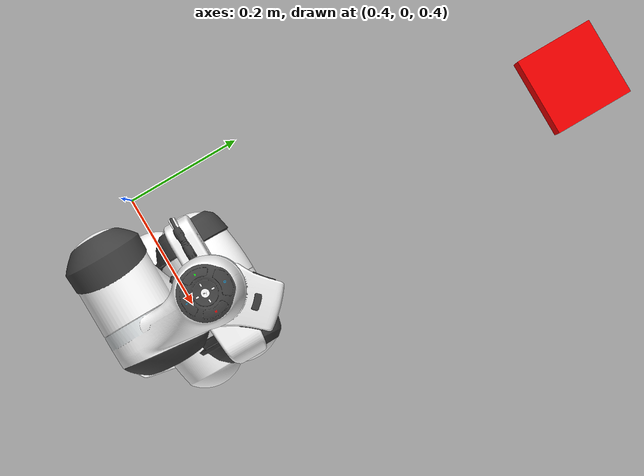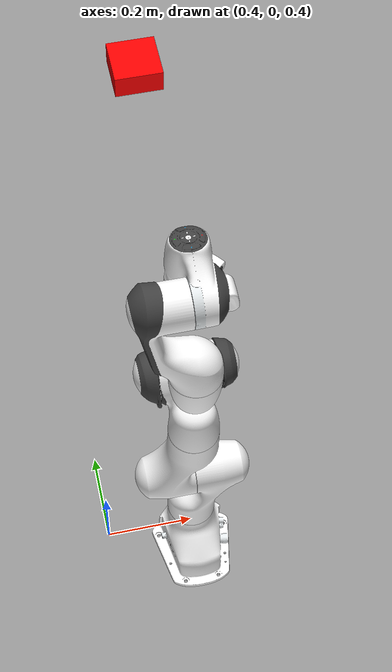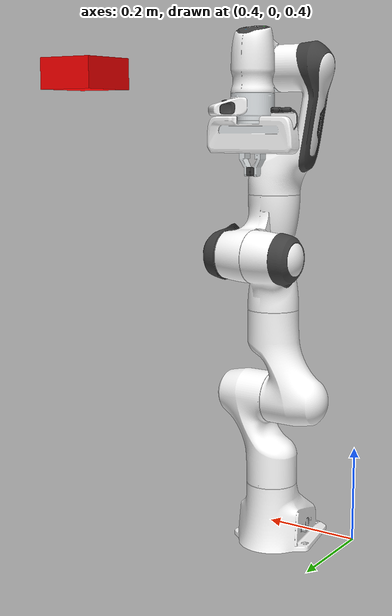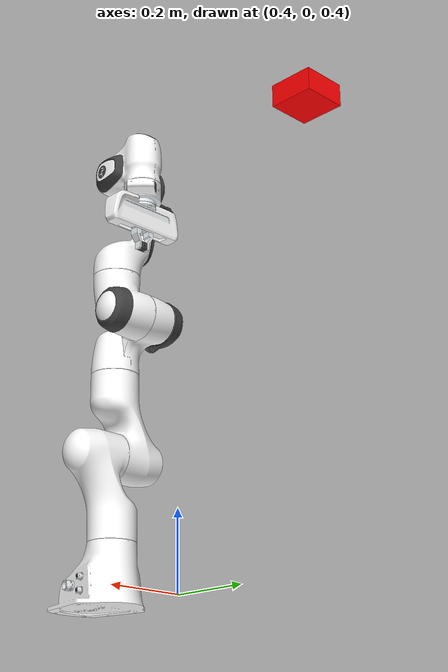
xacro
<?xml version="1.0"?>
<robot name="panda" xmlns:xacro="http://www.ros.org/wiki/xacro">
    <xacro:include filename="materials.xacro" />
    <xacro:include filename="arm.xacro" />
    <xacro:include filename="sensors.xacro" />
    <xacro:include filename="gazebo.xacro" />
    <xacro:include filename="ros2control.xacro" />
</robot>

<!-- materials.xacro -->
<robot xmlns:xacro="http://www.ros.org/wiki/xacro">
    <material name="red">
        <color rgba="1.0 0.0 0.0 1.000"/>
    </material>

    <material name="green">
        <color rgba="0.0 1.0 0.0 1.000"/>
    </material>

    <material name="blue">
        <color rgba="0.0 0.0 1.0 1.000"/>
    </material>
</robot>

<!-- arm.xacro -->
<robot xmlns:xacro="http://www.ros.org/wiki/xacro">
    <xacro:property name="link0_mass" value="0.1" />
    <xacro:property name="link1_mass" value="0.1" />
    <xacro:property name="link2_mass" value="0.1" />
    <xacro:property name="link3_mass" value="0.1" />
    <xacro:property name="link4_mass" value="0.1" />
    <xacro:property name="link5_mass" value="0.1" />
    <xacro:property name="link6_mass" value="0.1" />
    <xacro:property name="link7_mass" value="0.1" />
    <xacro:property name="hand_mass" value="0.1" />
    <xacro:property name="finger_mass" value="0.1" />

    <!-- World Frame -->
    <link name="world"/>

    <!-- Link 0 - Base -->
    <link name="panda_link0">
        <visual>
            <geometry>
                <mesh filename="package://panda_description/meshes/visual/link0.dae"/>
            </geometry>
        </visual>
        <collision>
            <geometry>
                <mesh filename="package://panda_description/meshes/collision/link0.obj"/>
            </geometry>
        </collision>
        <inertial>
            <origin xyz="0 0 0" rpy="0.0 0.0 0.0"/>
            <mass value="${link0_mass}"/>
            <inertia ixx="0.1" ixy="0.0" ixz="0.0" iyy="0.1" iyz="0.0" izz="0.1"/>
        </inertial>
    </link>

    <!-- World-Base Joint -->
    <joint name="virtual_joint" type="fixed">
        <parent link="world"/>
        <child link="panda_link0"/>
        <origin xyz="0.6 0 0.35" rpy="0 0 ${pi/2.0}"/>
    </joint>

    <!-- Link 1 -->
    <link name="panda_link1">
        <visual>
            <geometry>
                <mesh filename="package://panda_description/meshes/visual/link1.dae"/>
            </geometry>
        </visual>
        <collision>
            <geometry>
                <mesh filename="package://panda_description/meshes/collision/link1.obj"/>
            </geometry>
        </collision>
        <inertial>
            <origin xyz="0 0 0" rpy="0.0 0.0 0.0"/>
            <mass value="${link1_mass}"/>
            <inertia ixx="0.1" ixy="0.0" ixz="0.0" iyy="0.1" iyz="0.0" izz="0.1"/>
        </inertial>
    </link>

    <!-- Joint 1 -->
    <joint name="panda_joint1" type="revolute">
        <parent link="panda_link0"/>
        <child link="panda_link1"/>
        <origin xyz="0 0 0.333" rpy="0 0 0"/>
        <axis xyz="0 0 1"/>
        <limit effort="30.0" lower="-2.9671" upper="2.9671" velocity="10.0"/>
        <safety_controller k_position="100.0" k_velocity="40.0" soft_lower_limit="-2.8973" soft_upper_limit="2.8973"/>
    </joint>

    <!-- Link 2 -->
    <link name="panda_link2">
        <visual>
            <geometry>
                <mesh filename="package://panda_description/meshes/visual/link2.dae"/>
            </geometry>
        </visual>
        <collision>
            <geometry>
                <mesh filename="package://panda_description/meshes/collision/link2.obj"/>
            </geometry>
        </collision>
        <inertial>
            <origin xyz="0 0 0" rpy="0.0 0.0 0.0"/>
            <mass value="${link2_mass}"/>
            <inertia ixx="0.1" ixy="0.0" ixz="0.0" iyy="0.1" iyz="0.0" izz="0.1"/>
        </inertial>
    </link>

    <!-- Joint 2 -->
    <joint name="panda_joint2" type="revolute">
        <parent link="panda_link1"/>
        <child link="panda_link2"/>
        <origin rpy="-${pi/2.0} 0 0" xyz="0 0 0"/>
        <axis xyz="0 0 1"/>
        <limit effort="30.0" lower="-1.8326" upper="1.8326" velocity="10.0"/>
        <safety_controller k_position="100.0" k_velocity="40.0" soft_lower_limit="-1.7628" soft_upper_limit="1.7628"/>
    </joint>

    <!-- Link 3 -->
    <link name="panda_link3">
        <visual>
            <geometry>
                <mesh filename="package://panda_description/meshes/visual/link3.dae"/>
            </geometry>
        </visual>
        <collision>
            <geometry>
                <mesh filename="package://panda_description/meshes/collision/link3.obj"/>
            </geometry>
        </collision>
        <inertial>
            <origin xyz="0 0 0" rpy="0.0 0.0 0.0"/>
            <mass value="${link3_mass}"/>
            <inertia ixx="0.1" ixy="0.0" ixz="0.0" iyy="0.1" iyz="0.0" izz="0.1"/>
        </inertial>
    </link>

    <!-- Joint 3 -->
    <joint name="panda_joint3" type="revolute">
        <parent link="panda_link2"/>
        <child link="panda_link3"/>
        <origin rpy="${pi/2.0} 0 0" xyz="0 -0.316 0"/>
        <axis xyz="0 0 1"/>
        <limit effort="30.0" lower="-2.9671" upper="2.9671" velocity="10.0"/>
        <safety_controller k_position="100.0" k_velocity="40.0" soft_lower_limit="-2.8973" soft_upper_limit="2.8973"/>
    </joint>

    <!-- Link 4 -->
    <link name="panda_link4">
        <visual>
            <geometry>
                <mesh filename="package://panda_description/meshes/visual/link4.dae"/>
            </geometry>
        </visual>
        <collision>
            <geometry>
                <mesh filename="package://panda_description/meshes/collision/link4.obj"/>
            </geometry>
        </collision>
        <inertial>
            <origin xyz="0 0 0" rpy="0.0 0.0 0.0"/>
            <mass value="${link4_mass}"/>
            <inertia ixx="0.1" ixy="0.0" ixz="0.0" iyy="0.1" iyz="0.0" izz="0.1"/>
        </inertial>
    </link>

    <!-- Joint 4 -->
    <joint name="panda_joint4" type="revolute">
        <parent link="panda_link3"/>
        <child link="panda_link4"/>
        <origin rpy="${pi/2.0} 0 0" xyz="0.0825 0 0"/>
        <axis xyz="0 0 1"/>
        <limit effort="30.0" lower="-2.9671" upper="0.105" velocity="10.0"/>
        <safety_controller k_position="100.0" k_velocity="40.0" soft_lower_limit="-2.8973" soft_upper_limit="0.10"/>
    </joint>

    <!-- Link 5 -->
    <link name="panda_link5">
        <visual>
            <geometry>
                <mesh filename="package://panda_description/meshes/visual/link5.dae"/>
            </geometry>
        </visual>
        <collision>
            <geometry>
                <mesh filename="package://panda_description/meshes/collision/link5.obj"/>
            </geometry>
        </collision>
        <inertial>
            <origin xyz="0 0 0" rpy="0.0 0.0 0.0"/>
            <mass value="${link5_mass}"/>
            <inertia ixx="0.1" ixy="0.0" ixz="0.0" iyy="0.1" iyz="0.0" izz="0.1"/>
        </inertial>
    </link>

    <!-- Joint 5 -->
    <joint name="panda_joint5" type="revolute">
        <parent link="panda_link4"/>
        <child link="panda_link5"/>
        <origin rpy="-${pi/2.0} 0 0" xyz="-0.0825 0.384 0"/>
        <axis xyz="0 0 1"/>
        <limit effort="30.0" lower="-2.9671" upper="2.9671" velocity="10.0"/>
        <safety_controller k_position="100.0" k_velocity="40.0" soft_lower_limit="-2.8973" soft_upper_limit="2.8973"/>
    </joint>

    <!-- Link 6 -->
    <link name="panda_link6">
        <visual>
            <geometry>
                <mesh filename="package://panda_description/meshes/visual/link6.dae"/>
            </geometry>
        </visual>
        <collision>
            <geometry>
                <mesh filename="package://panda_description/meshes/collision/link6.obj"/>
            </geometry>
        </collision>
        <inertial>
            <origin xyz="0 0 0" rpy="0.0 0.0 0.0"/>
            <mass value="${link6_mass}"/>
            <inertia ixx="0.1" ixy="0.0" ixz="0.0" iyy="0.1" iyz="0.0" izz="0.1"/>
        </inertial>
    </link>

    <!-- Joint 6 -->
    <joint name="panda_joint6" type="revolute">
        <parent link="panda_link5"/>
        <child link="panda_link6"/>
        <origin rpy="${pi/2.0} 0 0" xyz="0 0 0"/>
        <axis xyz="0 0 1"/>
        <limit effort="30.0" lower="-0.0873" upper="3.8223" velocity="10.0"/>
        <safety_controller k_position="100.0" k_velocity="40.0" soft_lower_limit="-0.0175" soft_upper_limit="3.7525"/>
    </joint>

    <!-- Link 7 -->
    <link name="panda_link7">
        <visual>
            <geometry>
                <mesh filename="package://panda_description/meshes/visual/link7.dae"/>
            </geometry>
        </visual>
        <collision>
            <geometry>
                <mesh filename="package://panda_description/meshes/collision/link7.obj"/>
            </geometry>
        </collision>
        <inertial>
            <origin xyz="0 0 0" rpy="0.0 0.0 0.0"/>
            <mass value="${link7_mass}"/>
            <inertia ixx="0.1" ixy="0.0" ixz="0.0" iyy="0.1" iyz="0.0" izz="0.1"/>
        </inertial>
    </link>

    <!-- Joint 7 -->
    <joint name="panda_joint7" type="revolute">
        <parent link="panda_link6"/>
        <child link="panda_link7"/>
        <origin rpy="${pi/2.0} 0 0" xyz="0.088 0 0"/>
        <axis xyz="0 0 1"/>
        <limit effort="30.0" lower="-2.9671" upper="2.9671" velocity="10.0"/>
        <safety_controller k_position="100.0" k_velocity="40.0" soft_lower_limit="-2.8973" soft_upper_limit="2.8973"/>
    </joint>

    <!-- Hand Link -->
    <link name="panda_hand">
        <visual>
            <geometry>
                <mesh filename="package://panda_description/meshes/visual/hand.dae"/>
            </geometry>
        </visual>
        <collision>
            <geometry>
                <mesh filename="package://panda_description/meshes/collision/hand.obj"/>
            </geometry>
        </collision>
        <inertial>
            <origin xyz="0 0 0" rpy="0.0 0.0 0.0"/>
            <mass value="${hand_mass}"/>
            <inertia ixx="0.1" ixy="0.0" ixz="0.0" iyy="0.1" iyz="0.0" izz="0.1"/>
        </inertial>
    </link>

    <!-- Hand Joint -->
    <joint name="panda_hand_joint" type="fixed">
        <parent link="panda_link7"/>
        <child link="panda_hand"/>
        <origin rpy="0 0 0" xyz="0 0 0.106"/>
    </joint>

    <!-- Left Finger Link -->
    <link name="panda_leftfinger">
        <visual>
            <geometry>
                <mesh filename="package://panda_description/meshes/visual/finger.dae"/>
            </geometry>
        </visual>
        <collision>
            <geometry>
                <mesh filename="package://panda_description/meshes/collision/finger.obj"/>
            </geometry>
        </collision>
        <inertial>
            <origin xyz="0 0 0" rpy="0.0 0.0 0.0"/>
            <mass value="${finger_mass}"/>
            <inertia ixx="0.1" ixy="0.0" ixz="0.0" iyy="0.1" iyz="0.0" izz="0.1"/>
        </inertial>
        <gazebo reference="panda_leftfinger">
            <mu1>2.0</mu1>   <!-- 静摩擦系数 -->
            <mu2>1.5</mu2>   <!-- 动摩擦系数 -->
            <kp>1e5</kp>     <!-- 刚度（可选，提高接触刚度可减少穿透） -->
            <kd>1e3</kd>     <!-- 阻尼（可选） -->
        </gazebo>
    </link>

    <!-- Finger Joint 1 -->
    <joint name="panda_finger_joint1" type="prismatic">
        <parent link="panda_hand"/>
        <child link="panda_leftfinger"/>
        <origin rpy="0 0 0" xyz="0 0 0.0584"/>
        <axis xyz="0 1 0"/>
        <limit effort="1000.0" lower="-0.001" upper="0.05" velocity="20.0"/>
    </joint>

    <!-- Right Finger Link -->
    <link name="panda_rightfinger">
        <visual>
            <geometry>
                <mesh filename="package://panda_description/meshes/visual/finger.dae"/>
            </geometry>
            <origin rpy="0 0 ${pi}" xyz="0 0 0"/>
        </visual>
        <collision>
            <geometry>
                <mesh filename="package://panda_description/meshes/collision/finger.obj"/>
            </geometry>
            <origin rpy="0 0 ${pi}" xyz="0 0 0"/>
        </collision>
        <inertial>
            <origin xyz="0 0 0" rpy="0.0 0.0 0.0"/>
            <mass value="${finger_mass}"/>
            <inertia ixx="0.1" ixy="0.0" ixz="0.0" iyy="0.1" iyz="0.0" izz="0.1"/>
        </inertial>
        <gazebo reference="panda_leftfinger">
            <mu1>2.0</mu1>   <!-- 静摩擦系数 -->
            <mu2>1.5</mu2>   <!-- 动摩擦系数 -->
            <kp>1e5</kp>     <!-- 刚度（可选，提高接触刚度可减少穿透） -->
            <kd>1e3</kd>     <!-- 阻尼（可选） -->
        </gazebo>
    </link>

    <!-- Finger Joint 2 -->
    <joint name="panda_finger_joint2" type="prismatic">
        <parent link="panda_hand"/>
        <child link="panda_rightfinger"/>
        <origin rpy="0 0 0" xyz="0 0 0.0584"/>
        <axis xyz="0 1 0"/>
        <limit effort="1000.0" lower="-0.05" upper="0.001" velocity="20.0"/>
        <mimic joint="panda_finger_joint1" multiplier="-1"/>
    </joint>

</robot>

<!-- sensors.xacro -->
<robot xmlns:xacro="http://www.ros.org/wiki/xacro">

    <xacro:property name="camera_length" value="0.1" />
    <xacro:property name="camera_width" value="0.1" />
    <xacro:property name="camera_height" value="0.05" />
    <xacro:property name="camera_mass" value="0.1" />

    <!-- Camera Link -->
    <link name="camera_link">
        <visual>
            <origin xyz="0 0 0" rpy="0.0 0.0 0.0"/>
            <geometry>
                <box size="${camera_length} ${camera_width} ${camera_height}"/>
            </geometry>
            <material name="red"/>
        </visual>
        <collision>
            <origin xyz="0 0 0" rpy="0.0 0.0 0.0"/>
            <geometry>
                <box size="${camera_length} ${camera_width} ${camera_height}"/>
            </geometry>
            <material name="red"/>
        </collision>
        <inertial>
            <origin xyz="0 0 0" rpy="0.0 0.0 0.0"/>
            <mass value="${camera_mass}"/>
            <inertia ixx="0.1" ixy="0.0" ixz="0.0" iyy="0.1" iyz="0.0" izz="0.1"/>
        </inertial>
    </link>

    <!-- Base-Camera Joint -->
    <joint name="camera_joint" type="fixed">
        <origin xyz="0.6 0 1.0" rpy="0.0 0.0 0.0"/>
        <parent link="panda_link0"/>
        <child link="camera_link"/>
    </joint>

    <!-- Camera Optical Link -->
    <link name="camera_link_optical" />

    <!-- Camera-Optical Joint -->  <!--to fit opencv orientation-->
    <joint name="camera_optical_joint" type="fixed">
        <parent link="camera_link"/>
        <child link="camera_link_optical"/>
        <origin xyz="0 0 0" rpy="${-pi/2} 0 ${-pi/2}"/>
    </joint>

    <gazebo reference="camera_link">
        <sensor name="camera" type="camera">
            <pose>0 0 0 0 ${pi/2.0} 0</pose>
            <visualize>true</visualize>
            <update_rate>10.0</update_rate>
            <always_on>1</always_on>
            <topic>camera/image_raw</topic>
            <!-- Camera Intrinsics -->
            <camera name="intel_realsense_r200">
                <camera_info_topic>camera/camera_info</camera_info_topic>
                <optical_frame_id>camera_link_optical</optical_frame_id>
                <horizontal_fov>1.0</horizontal_fov>
                <image>
                    <width>640</width>
                    <height>320</height>
                    <format>R8G8B8</format>
                </image>
                <clip>
                    <near>0.05</near>
                    <far>8.0</far>
                </clip>
            </camera>
        </sensor>
    </gazebo>

</robot>
